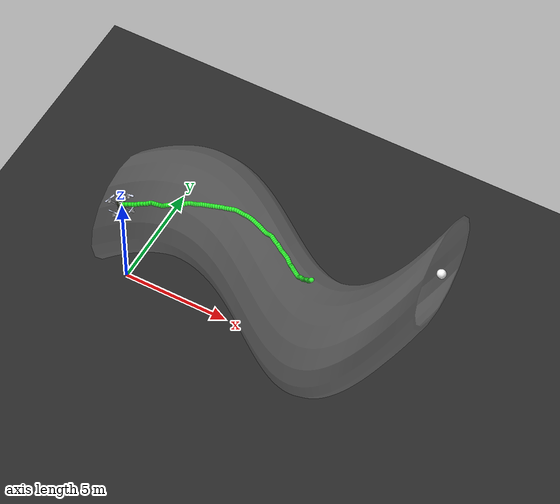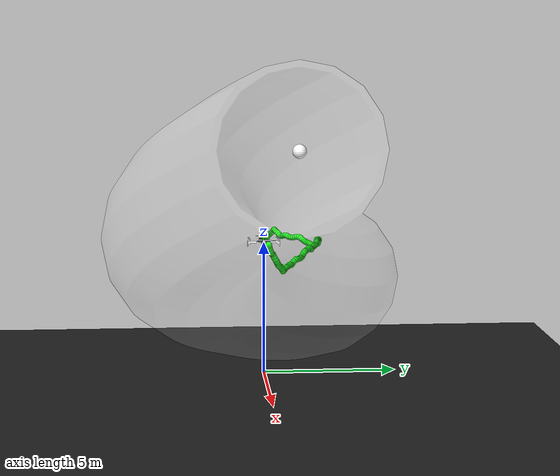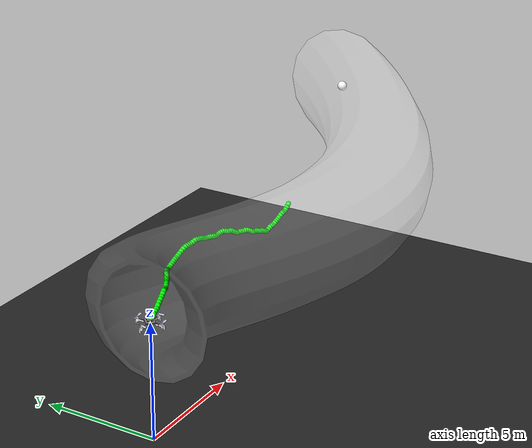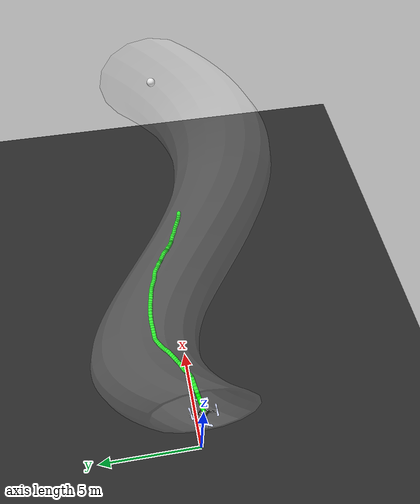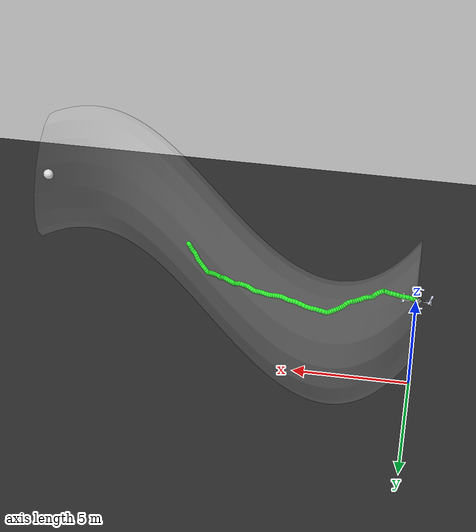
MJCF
<mujoco model="CF2 scene">
  <include file="cf2.xml" />

  <statistic center="0 0 0.1" extent="0.2" meansize=".05" />

  <visual>

    <rgba haze="0.15 0.25 0.35 0" />
    <global azimuth="-20" elevation="-20" ellipsoidinertia="true" />
    <map zfar="1000" />
  </visual>

  <asset>
    <mesh name="tunnel" file="tube_thick.obj" scale="1.0 1.0 1.0" />
    <texture type="skybox" builtin="gradient" rgb1="0.3 0.5 0.7" rgb2="0 0 0" width="512" height="3072" />

    <texture type="2d" name="groundplane" builtin="checker" mark="edge" rgb1="0.1 0.1 0.1" rgb2="0.2 0.2 0.2" markrgb="0.8 0.8 0.8" width="300" height="300" />

    <material name="groundplane" texture="groundplane" texuniform="true" texrepeat="5 5" reflectance="0.0" />
  </asset>

  <worldbody>
    <light diffuse="1 1 1" ambient="1 1 1" pos="0 0 100" dir="0 0 -1" directional="false" castshadow="false" />

    <geom name="floor" size="0 0 0.05" type="plane" material="groundplane" />
    <site name="x_axis" size="0.005" type="cylinder" fromto="0 0 0 1 0 0" rgba="1 0 0 1" />
    <site name="y_axis" size="0.005" type="cylinder" fromto="0 0 0 0 1 0" rgba="0 1 0 1" />
    <site name="z_axis" size="0.005" type="cylinder" fromto="0 0 0 0 0 1" rgba="0 0 1 1" />

    <site name="target" size="0.2" type="sphere" pos="15 0 10" rgba="1 1 1 1" />

    <camera name="cam_aux" pos="-3.429 -18.876 13.649" xyaxes="0.874 -0.486 -0.000 0.179 0.321 0.930" />
    <camera name="cam_traj_1" pos="-7.863 -0.826 23.122" xyaxes="0.020 -1.000 0.000 0.737 0.014 0.676" />
    <camera name="cam_traj_2" pos="7.041 -14.560 20.718" xyaxes="1.000 -0.031 -0.000 0.021 0.691 0.722" />
    <camera name="cam_traj_3" pos="-11.538 -0.602 8.690" xyaxes="0.046 -0.999 -0.000 0.161 0.007 0.987" />

    <body name="tunnel" pos="0.0 0.0 0.0" quat="1 0 0 0">
         <geom name="tunnel" type="mesh" mesh="tunnel" pos="-0.0 0.0 0.029" quat="1 0 0 0" rgba="1 1 1 0.05" />
    </body>

  <body name="trajectory_0" pos="0 0 0"><geom type="capsule" fromto="0.0016242307066964491 0.00035727284126292657 5.025240836531203 0.016792177813116975 0.0035838782917272127 5.068077347418681" size="0.1" rgba="0 1 0.0 1" /><geom type="capsule" fromto="0.016792177813116975 0.0035838782917272127 5.068077347418681 0.06507794690503341 0.011791616971504782 5.102545168872628" size="0.1" rgba="0 1 0.0 1" /><geom type="capsule" fromto="0.06507794690503341 0.011791616971504782 5.102545168872628 0.17600153098318522 0.03164271755064546 5.16753624537369" size="0.1" rgba="0 1 0.0 1" /><geom type="capsule" fromto="0.17600153098318522 0.03164271755064546 5.16753624537369 0.32722478067976635 0.06061030097704882 5.24559968063181" size="0.1" rgba="0 1 0.0 1" /><geom type="capsule" fromto="0.32722478067976635 0.06061030097704882 5.24559968063181 0.4681508263271362 0.08900980247075686 5.282821376171256" size="0.1" rgba="0 1 0.0 1" /><geom type="capsule" fromto="0.4681508263271362 0.08900980247075686 5.282821376171256 0.6018157600888904 0.11767093485095181 5.327084009479256" size="0.1" rgba="0 1 0.0 1" /><geom type="capsule" fromto="0.6018157600888904 0.11767093485095181 5.327084009479256 0.7402822786519755 0.15044524774542536 5.41260967560658" size="0.1" rgba="0 1 0.0 1" /><geom type="capsule" fromto="0.7402822786519755 0.15044524774542536 5.41260967560658 0.8656667919114448 0.1827594041475904 5.466191825755004" size="0.1" rgba="0 1 0.0 1" /><geom type="capsule" fromto="0.8656667919114448 0.1827594041475904 5.466191825755004 1.0000742271575636 0.21320986772431977 5.529156459676245" size="0.1" rgba="0 1 0.0 1" /><geom type="capsule" fromto="1.0000742271575636 0.21320986772431977 5.529156459676245 1.1309166958522894 0.24163478632838348 5.58000816374289" size="0.1" rgba="0 1 0.0 1" /><geom type="capsule" fromto="1.1309166958522894 0.24163478632838348 5.58000816374289 1.2488103382406166 0.2694466236793322 5.662883042841976" size="0.1" rgba="0 1 0.0 1" /><geom type="capsule" fromto="1.2488103382406166 0.2694466236793322 5.662883042841976 1.342564037281537 0.29607451788016925 5.709321277438194" size="0.1" rgba="0 1 0.0 1" /><geom type="capsule" fromto="1.342564037281537 0.29607451788016925 5.709321277438194 1.418511499548895 0.32198483103521863 5.679278104889069" size="0.1" rgba="0 1 0.0 1" /><geom type="capsule" fromto="1.418511499548895 0.32198483103521863 5.679278104889069 1.5008463677522434 0.35533789570155455 5.6520462384423" size="0.1" rgba="0 1 0.0 1" /><geom type="capsule" fromto="1.5008463677522434 0.35533789570155455 5.6520462384423 1.5878056039032877 0.39757571087802734 5.623655684157181" size="0.1" rgba="0 1 0.0 1" /><geom type="capsule" fromto="1.5878056039032877 0.39757571087802734 5.623655684157181 1.666302889656289 0.4438420000958776 5.57870450509224" size="0.1" rgba="0 1 0.0 1" /><geom type="capsule" fromto="1.666302889656289 0.4438420000958776 5.57870450509224 1.7330056734746202 0.49118244411282663 5.53204344336847" size="0.1" rgba="0 1 0.0 1" /><geom type="capsule" fromto="1.7330056734746202 0.49118244411282663 5.53204344336847 1.7956577550508948 0.535576608465578 5.523877414556881" size="0.1" rgba="0 1 0.0 1" /><geom type="capsule" fromto="1.7956577550508948 0.535576608465578 5.523877414556881 1.8679827067285817 0.5762815142047812 5.54714198520346" size="0.1" rgba="0 1 0.0 1" /><geom type="capsule" fromto="1.8679827067285817 0.5762815142047812 5.54714198520346 1.9517918913069394 0.6167259430169639 5.575853768205154" size="0.1" rgba="0 1 0.0 1" /><geom type="capsule" fromto="1.9517918913069394 0.6167259430169639 5.575853768205154 2.038902157467931 0.6608764973850116 5.593298757132049" size="0.1" rgba="0 1 0.0 1" /><geom type="capsule" fromto="2.038902157467931 0.6608764973850116 5.593298757132049 2.1284173640098354 0.709831470780614 5.587448438459598" size="0.1" rgba="0 1 0.0 1" /><geom type="capsule" fromto="2.1284173640098354 0.709831470780614 5.587448438459598 2.2169501855641016 0.7605677327903723 5.559242145740712" size="0.1" rgba="0 1 0.0 1" /><geom type="capsule" fromto="2.2169501855641016 0.7605677327903723 5.559242145740712 2.3112102748219234 0.8169199101810714 5.5614641626859065" size="0.1" rgba="0 1 0.0 1" /><geom type="capsule" fromto="2.3112102748219234 0.8169199101810714 5.5614641626859065 2.40127291748281 0.8754002663322565 5.569014345120183" size="0.1" rgba="0 1 0.0 1" /><geom type="capsule" fromto="2.40127291748281 0.8754002663322565 5.569014345120183 2.4875064212119073 0.9364565188115707 5.584957554248743" size="0.1" rgba="0 1 0.0 1" /><geom type="capsule" fromto="2.4875064212119073 0.9364565188115707 5.584957554248743 2.5747721851727676 1.001745473799322 5.621791601263369" size="0.1" rgba="0 1 0.0 1" /><geom type="capsule" fromto="2.5747721851727676 1.001745473799322 5.621791601263369 2.65861637798802 1.0642421756426634 5.631029485779322" size="0.1" rgba="0 1 0.0 1" /><geom type="capsule" fromto="2.65861637798802 1.0642421756426634 5.631029485779322 2.7411138218613287 1.1245784246029351 5.622998117316388" size="0.1" rgba="0 1 0.0 1" /><geom type="capsule" fromto="2.7411138218613287 1.1245784246029351 5.622998117316388 2.8136458446482657 1.1800812371873701 5.579181506806972" size="0.1" rgba="0 1 0.0 1" /><geom type="capsule" fromto="2.8136458446482657 1.1800812371873701 5.579181506806972 2.8808387233562134 1.2272831784517444 5.540600999252269" size="0.1" rgba="0 1 0.0 1" /><geom type="capsule" fromto="2.8808387233562134 1.2272831784517444 5.540600999252269 2.9460517205397223 1.2682071365661216 5.522883477218278" size="0.1" rgba="0 1 0.0 1" /><geom type="capsule" fromto="2.9460517205397223 1.2682071365661216 5.522883477218278 3.0099617979020588 1.31073154631683 5.494507364225115" size="0.1" rgba="0 1 0.0 1" /><geom type="capsule" fromto="3.0099617979020588 1.31073154631683 5.494507364225115 3.0815509552020006 1.3589520281451197 5.484540081544132" size="0.1" rgba="0 1 0.0 1" /><geom type="capsule" fromto="3.0815509552020006 1.3589520281451197 5.484540081544132 3.1617993903104114 1.406021451782459 5.4822482853178265" size="0.1" rgba="0 1 0.0 1" /><geom type="capsule" fromto="3.1617993903104114 1.406021451782459 5.4822482853178265 3.244704450776487 1.448343516317241 5.461847636371677" size="0.1" rgba="0 1 0.0 1" /><geom type="capsule" fromto="3.244704450776487 1.448343516317241 5.461847636371677 3.3276558356664885 1.489820941288449 5.443806455548776" size="0.1" rgba="0 1 0.0 1" /><geom type="capsule" fromto="3.3276558356664885 1.489820941288449 5.443806455548776 3.4073448099199375 1.5295863373490803 5.426697739153552" size="0.1" rgba="0 1 0.0 1" /><geom type="capsule" fromto="3.4073448099199375 1.5295863373490803 5.426697739153552 3.4935380315692743 1.5597853122671557 5.419922366060234" size="0.1" rgba="0 1 0.0 1" /><geom type="capsule" fromto="3.4935380315692743 1.5597853122671557 5.419922366060234 3.60463244564459 1.5749952801672735 5.453905540618287" size="0.1" rgba="0 1 0.0 1" /><geom type="capsule" fromto="3.60463244564459 1.5749952801672735 5.453905540618287 3.7325640119812458 1.5816359115523224 5.504700672452823" size="0.1" rgba="0 1 0.0 1" /><geom type="capsule" fromto="3.7325640119812458 1.5816359115523224 5.504700672452823 3.850083433560304 1.588427130504364 5.533291559684574" size="0.1" rgba="0 1 0.0 1" /><geom type="capsule" fromto="3.850083433560304 1.588427130504364 5.533291559684574 3.9625700580019876 1.599174928223456 5.5783735645183" size="0.1" rgba="0 1 0.0 1" /><geom type="capsule" fromto="3.9625700580019876 1.599174928223456 5.5783735645183 4.067230835111724 1.6095394765053506 5.609014302170815" size="0.1" rgba="0 1 0.0 1" /><geom type="capsule" fromto="4.067230835111724 1.6095394765053506 5.609014302170815 4.171890940346022 1.6155674688338924 5.623693563580451" size="0.1" rgba="0 1 0.0 1" /><geom type="capsule" fromto="4.171890940346022 1.6155674688338924 5.623693563580451 4.2934765243901 1.6176929795776511 5.668305854217339" size="0.1" rgba="0 1 0.0 1" /><geom type="capsule" fromto="4.2934765243901 1.6176929795776511 5.668305854217339 4.419902530393039 1.6167829223956516 5.7176279335245095" size="0.1" rgba="0 1 0.0 1" /><geom type="capsule" fromto="4.419902530393039 1.6167829223956516 5.7176279335245095 4.55404674898675 1.6100784589623782 5.781771847339537" size="0.1" rgba="0 1 0.0 1" /><geom type="capsule" fromto="4.55404674898675 1.6100784589623782 5.781771847339537 4.68240202902296 1.5986458450993475 5.837876008735576" size="0.1" rgba="0 1 0.0 1" /><geom type="capsule" fromto="4.68240202902296 1.5986458450993475 5.837876008735576 4.7976702611906425 1.584358974221217 5.869985262824092" size="0.1" rgba="0 1 0.0 1" /><geom type="capsule" fromto="4.7976702611906425 1.584358974221217 5.869985262824092 4.903078518351056 1.5692603074590965 5.875188975130719" size="0.1" rgba="0 1 0.0 1" /><geom type="capsule" fromto="4.903078518351056 1.5692603074590965 5.875188975130719 5.007457546887881 1.5518438466244664 5.877084085718385" size="0.1" rgba="0 1 0.0 1" /><geom type="capsule" fromto="5.007457546887881 1.5518438466244664 5.877084085718385 5.115559516999508 1.528886041532279 5.8907459765075" size="0.1" rgba="0 1 0.0 1" /><geom type="capsule" fromto="5.115559516999508 1.528886041532279 5.8907459765075 5.23252134127328 1.5019843509274633 5.9278310665144085" size="0.1" rgba="0 1 0.0 1" /><geom type="capsule" fromto="5.23252134127328 1.5019843509274633 5.9278310665144085 5.345171982166391 1.4785058433263893 5.960061648124492" size="0.1" rgba="0 1 0.0 1" /><geom type="capsule" fromto="5.345171982166391 1.4785058433263893 5.960061648124492 5.442390969864802 1.4603501807592605 5.9590552389691265" size="0.1" rgba="0 1 0.0 1" /><geom type="capsule" fromto="5.442390969864802 1.4603501807592605 5.9590552389691265 5.5346885068898874 1.443008370937544 5.949667980546088" size="0.1" rgba="0 1 0.0 1" /><geom type="capsule" fromto="5.5346885068898874 1.443008370937544 5.949667980546088 5.626135603291774 1.4246341984446305 5.9400957532096985" size="0.1" rgba="0 1 0.0 1" /><geom type="capsule" fromto="5.626135603291774 1.4246341984446305 5.9400957532096985 5.7151233602751965 1.4061955293742519 5.921407425031522" size="0.1" rgba="0 1 0.0 1" /><geom type="capsule" fromto="5.7151233602751965 1.4061955293742519 5.921407425031522 5.801174329835579 1.386815406849964 5.89293278287863" size="0.1" rgba="0 1 0.0 1" /><geom type="capsule" fromto="5.801174329835579 1.386815406849964 5.89293278287863 5.887958106777882 1.3637752860997612 5.873238068884671" size="0.1" rgba="0 1 0.0 1" /><geom type="capsule" fromto="5.887958106777882 1.3637752860997612 5.873238068884671 5.976359447849797 1.3345377129209899 5.866356856855762" size="0.1" rgba="0 1 0.0 1" /><geom type="capsule" fromto="5.976359447849797 1.3345377129209899 5.866356856855762 6.06410174842795 1.2995365846694318 5.861068800998261" size="0.1" rgba="0 1 0.0 1" /><geom type="capsule" fromto="6.06410174842795 1.2995365846694318 5.861068800998261 6.151435540912381 1.2615977103667306 5.854859526399462" size="0.1" rgba="0 1 0.0 1" /><geom type="capsule" fromto="6.151435540912381 1.2615977103667306 5.854859526399462 6.238310309042901 1.2262095482924693 5.84171078609308" size="0.1" rgba="0 1 0.0 1" /><geom type="capsule" fromto="6.238310309042901 1.2262095482924693 5.84171078609308 6.324083865501767 1.1982528191537227 5.821479897412174" size="0.1" rgba="0 1 0.0 1" /><geom type="capsule" fromto="6.324083865501767 1.1982528191537227 5.821479897412174 6.40930906146631 1.178572728631368 5.809296512767536" size="0.1" rgba="0 1 0.0 1" /><geom type="capsule" fromto="6.40930906146631 1.178572728631368 5.809296512767536 6.4918991405930955 1.1641935195629112 5.816236199469627" size="0.1" rgba="0 1 0.0 1" /><geom type="capsule" fromto="6.4918991405930955 1.1641935195629112 5.816236199469627 6.573919849766287 1.1466830604806073 5.845241351726314" size="0.1" rgba="0 1 0.0 1" /><geom type="capsule" fromto="6.573919849766287 1.1466830604806073 5.845241351726314 6.656795009206265 1.119929902947843 5.873926759811006" size="0.1" rgba="0 1 0.0 1" /><geom type="capsule" fromto="6.656795009206265 1.119929902947843 5.873926759811006 6.734125020997047 1.0820376168675396 5.904031865970198" size="0.1" rgba="0 1 0.0 1" /><geom type="capsule" fromto="6.734125020997047 1.0820376168675396 5.904031865970198 6.800256044432322 1.0402150489585322 5.905858343408738" size="0.1" rgba="0 1 0.0 1" /><geom type="capsule" fromto="6.800256044432322 1.0402150489585322 5.905858343408738 6.865610409185712 1.000342457008332 5.883025008993923" size="0.1" rgba="0 1 0.0 1" /><geom type="capsule" fromto="6.865610409185712 1.000342457008332 5.883025008993923 6.9388240475831795 0.9615884743030279 5.8632844425371395" size="0.1" rgba="0 1 0.0 1" /><geom type="capsule" fromto="6.9388240475831795 0.9615884743030279 5.8632844425371395 7.01887802822784 0.923044299796602 5.8515727229766625" size="0.1" rgba="0 1 0.0 1" /><geom type="capsule" fromto="7.01887802822784 0.923044299796602 5.8515727229766625 7.103482197998484 0.8861573893896347 5.851278807668758" size="0.1" rgba="0 1 0.0 1" /><geom type="capsule" fromto="7.103482197998484 0.8861573893896347 5.851278807668758 7.179551616046154 0.8524786159385916 5.815367740774389" size="0.1" rgba="0 1 0.0 1" /><geom type="capsule" fromto="7.179551616046154 0.8524786159385916 5.815367740774389 7.245376618125558 0.8202457098674308 5.767782657273866" size="0.1" rgba="0 1 0.0 1" /><geom type="capsule" fromto="7.245376618125558 0.8202457098674308 5.767782657273866 7.304454829949599 0.7905750332880024 5.737136215683552" size="0.1" rgba="0 1 0.0 1" /><geom type="capsule" fromto="7.304454829949599 0.7905750332880024 5.737136215683552 7.361037657022653 0.7623368903480221 5.7006352968648875" size="0.1" rgba="0 1 0.0 1" /><geom type="capsule" fromto="7.361037657022653 0.7623368903480221 5.7006352968648875 7.427715037334346 0.7312914393924569 5.691406786780552" size="0.1" rgba="0 1 0.0 1" /><geom type="capsule" fromto="7.427715037334346 0.7312914393924569 5.691406786780552 7.502151015385965 0.6945636075611535 5.702757537265521" size="0.1" rgba="0 1 0.0 1" /><geom type="capsule" fromto="7.502151015385965 0.6945636075611535 5.702757537265521 7.574577271036616 0.6533389027876062 5.696820153435637" size="0.1" rgba="0 1 0.0 1" /><geom type="capsule" fromto="7.574577271036616 0.6533389027876062 5.696820153435637 7.651062757357083 0.6093339912183711 5.694370599264193" size="0.1" rgba="0 1 0.0 1" /><geom type="capsule" fromto="7.651062757357083 0.6093339912183711 5.694370599264193 7.7317128640896415 0.5618720638462409 5.708560232360654" size="0.1" rgba="0 1 0.0 1" /><geom type="capsule" fromto="7.7317128640896415 0.5618720638462409 5.708560232360654 7.8034570072227645 0.5135937798306125 5.697506284180835" size="0.1" rgba="0 1 0.0 1" /><geom type="capsule" fromto="7.8034570072227645 0.5135937798306125 5.697506284180835 7.86414712073867 0.4675170546952716 5.667538368240765" size="0.1" rgba="0 1 0.0 1" /><geom type="capsule" fromto="7.86414712073867 0.4675170546952716 5.667538368240765 7.9206408028433755 0.42614854832843274 5.635069070266618" size="0.1" rgba="0 1 0.0 1" /><geom type="capsule" fromto="7.9206408028433755 0.42614854832843274 5.635069070266618 7.974703530905389 0.3914754733742265 5.590272342352884" size="0.1" rgba="0 1 0.0 1" /><geom type="capsule" fromto="7.974703530905389 0.3914754733742265 5.590272342352884 8.025289788129495 0.361817691193683 5.569556616216855" size="0.1" rgba="0 1 0.0 1" /><geom type="capsule" fromto="8.025289788129495 0.361817691193683 5.569556616216855 8.076274138818068 0.3328183963649934 5.583359268296424" size="0.1" rgba="0 1 0.0 1" /><geom type="capsule" fromto="8.076274138818068 0.3328183963649934 5.583359268296424 8.126599521996907 0.3016610419208043 5.591010703600376" size="0.1" rgba="0 1 0.0 1" /><geom type="capsule" fromto="8.126599521996907 0.3016610419208043 5.591010703600376 8.173148734932758 0.268333030497553 5.577449709464876" size="0.1" rgba="0 1 0.0 1" /><geom type="capsule" fromto="8.173148734932758 0.268333030497553 5.577449709464876 8.221013027450914 0.23540966486938594 5.562498325287376" size="0.1" rgba="0 1 0.0 1" /><geom type="capsule" fromto="8.221013027450914 0.23540966486938594 5.562498325287376 8.274981507867205 0.20402781960002447 5.551002733867967" size="0.1" rgba="0 1 0.0 1" /><geom type="capsule" fromto="8.274981507867205 0.20402781960002447 5.551002733867967 8.333695703859483 0.17152036962250017 5.5421904230851045" size="0.1" rgba="0 1 0.0 1" /><geom type="capsule" fromto="8.333695703859483 0.17152036962250017 5.5421904230851045 8.393246725246613 0.1393878894117273 5.529218439965589" size="0.1" rgba="0 1 0.0 1" /><geom type="capsule" fromto="8.393246725246613 0.1393878894117273 5.529218439965589 8.453003660063855 0.11040218221378234 5.5048909318613175" size="0.1" rgba="0 1 0.0 1" /><geom type="capsule" fromto="8.453003660063855 0.11040218221378234 5.5048909318613175 8.512406038404974 0.08449284187156411 5.478617547149719" size="0.1" rgba="0 1 0.0 1" /><geom type="capsule" fromto="8.512406038404974 0.08449284187156411 5.478617547149719 8.57247289184411 0.062046058087883244 5.465179292225573" size="0.1" rgba="0 1 0.0 1" /><geom type="capsule" fromto="8.57247289184411 0.062046058087883244 5.465179292225573 8.637262644456335 0.03669449268802879 5.4991291892856715" size="0.1" rgba="0 1 0.0 1" /><geom type="capsule" fromto="8.637262644456335 0.03669449268802879 5.4991291892856715 8.70424337245949 0.00199566547271713 5.568226347360947" size="0.1" rgba="0 1 0.0 1" /><geom type="capsule" fromto="8.70424337245949 0.00199566547271713 5.568226347360947 8.769879496792328 -0.03979927582322768 5.642242548467266" size="0.1" rgba="0 1 0.0 1" /><geom type="capsule" fromto="8.769879496792328 -0.03979927582322768 5.642242548467266 8.828222380116042 -0.08144571345189003 5.6720718549371245" size="0.1" rgba="0 1 0.0 1" /><geom type="capsule" fromto="8.828222380116042 -0.08144571345189003 5.6720718549371245 8.884416165731597 -0.12010256467969463 5.713964177138538" size="0.1" rgba="0 1 0.0 1" /><geom type="capsule" fromto="8.884416165731597 -0.12010256467969463 5.713964177138538 8.947166906712814 -0.1531208600427742 5.795049651379743" size="0.1" rgba="0 1 0.0 1" /><geom type="capsule" fromto="8.947166906712814 -0.1531208600427742 5.795049651379743 9.010873239442583 -0.18376968193338478 5.850810165953785" size="0.1" rgba="0 1 0.0 1" /><geom type="capsule" fromto="9.010873239442583 -0.18376968193338478 5.850810165953785 9.068490707877125 -0.22407121160075555 5.928645785307671" size="0.1" rgba="0 1 0.0 1" /><geom type="capsule" fromto="9.068490707877125 -0.22407121160075555 5.928645785307671 9.11676383934948 -0.2706361281922799 6.017876606654177" size="0.1" rgba="0 1 0.0 1" /><geom type="capsule" fromto="9.11676383934948 -0.2706361281922799 6.017876606654177 9.16745300774453 -0.31351791086236647 6.104811319477405" size="0.1" rgba="0 1 0.0 1" /><geom type="capsule" fromto="9.16745300774453 -0.31351791086236647 6.104811319477405 9.220365929492951 -0.34937368177950073 6.1599343724238755" size="0.1" rgba="0 1 0.0 1" /><geom type="capsule" fromto="9.220365929492951 -0.34937368177950073 6.1599343724238755 9.270121584137605 -0.37709575988653676 6.17866178149529" size="0.1" rgba="0 1 0.0 1" /><geom type="capsule" fromto="9.270121584137605 -0.37709575988653676 6.17866178149529 9.319912562516278 -0.4030155713088363 6.2389902982175585" size="0.1" rgba="0 1 0.0 1" /><geom type="capsule" fromto="9.319912562516278 -0.4030155713088363 6.2389902982175585 9.372464919452616 -0.43161688310997615 6.327600323677753" size="0.1" rgba="0 1 0.0 1" /><geom type="capsule" fromto="9.372464919452616 -0.43161688310997615 6.327600323677753 9.424948808703903 -0.45487448570197403 6.417660803286492" size="0.1" rgba="0 1 0.0 1" /><geom type="capsule" fromto="9.424948808703903 -0.45487448570197403 6.417660803286492 9.471810715829012 -0.4710506803187078 6.484917668395276" size="0.1" rgba="0 1 0.0 1" /></body></worldbody>

  <contact>
    <exclude name="cf2_tunnel" body1="cf2" body2="tunnel" />
  </contact>

</mujoco>

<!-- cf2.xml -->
<mujoco model="cf2">
  <option integrator="RK4" density="1.225" viscosity="1.8e-5" timestep="0.1"/>

  <compiler inertiafromgeom="false" meshdir="assets" autolimits="true"/>

  <default>
    <default class="cf2">
      <default class="visual">
        <geom group="2" type="mesh" contype="0" conaffinity="0"/>
      </default>
      <default class="collision">
        <geom group="3" type="mesh"/>
      </default>
      <site group="5"/>
    </default>
  </default>

  <asset>
    <material name="polished_plastic" rgba="0.631 0.659 0.678 1"/>
    <material name="polished_gold" rgba="0.969 0.878 0.6 1"/>
    <material name="medium_gloss_plastic" rgba="0.109 0.184 0.0 1"/>
    <material name="propeller_plastic" rgba="0.792 0.820 0.933 1"/>
    <material name="white" rgba="1 1 1 1"/>
    <material name="body_frame_plastic" rgba="0.102 0.102 0.102 1"/>
    <material name="burnished_chrome" rgba="0.898 0.898 0.898 1"/>

    <mesh file="cf2_0.obj"/>
    <mesh file="cf2_1.obj"/>
    <mesh file="cf2_2.obj"/>
    <mesh file="cf2_3.obj"/>
    <mesh file="cf2_4.obj"/>
    <mesh file="cf2_5.obj"/>
    <mesh file="cf2_6.obj"/>
    <mesh file="cf2_collision_0.obj"/>
    <mesh file="cf2_collision_1.obj"/>
    <mesh file="cf2_collision_2.obj"/>
    <mesh file="cf2_collision_3.obj"/>
    <mesh file="cf2_collision_4.obj"/>
    <mesh file="cf2_collision_5.obj"/>
    <mesh file="cf2_collision_6.obj"/>
    <mesh file="cf2_collision_7.obj"/>
    <mesh file="cf2_collision_8.obj"/>
    <mesh file="cf2_collision_9.obj"/>
    <mesh file="cf2_collision_10.obj"/>
    <mesh file="cf2_collision_11.obj"/>
    <mesh file="cf2_collision_12.obj"/>
    <mesh file="cf2_collision_13.obj"/>
    <mesh file="cf2_collision_14.obj"/>
    <mesh file="cf2_collision_15.obj"/>
    <mesh file="cf2_collision_16.obj"/>
    <mesh file="cf2_collision_17.obj"/>
    <mesh file="cf2_collision_18.obj"/>
    <mesh file="cf2_collision_19.obj"/>
    <mesh file="cf2_collision_20.obj"/>
    <mesh file="cf2_collision_21.obj"/>
    <mesh file="cf2_collision_22.obj"/>
    <mesh file="cf2_collision_23.obj"/>
    <mesh file="cf2_collision_24.obj"/>
    <mesh file="cf2_collision_25.obj"/>
    <mesh file="cf2_collision_26.obj"/>
    <mesh file="cf2_collision_27.obj"/>
    <mesh file="cf2_collision_28.obj"/>
    <mesh file="cf2_collision_29.obj"/>
    <mesh file="cf2_collision_30.obj"/>
    <mesh file="cf2_collision_31.obj"/>
  </asset>

  <worldbody>
    <body name="cf2" pos="0 0.0 5.0" childclass="cf2">
      <freejoint/>
      <inertial pos="0 0 0" mass="0.1" diaginertia="1e-2 1e-2 1e-2"/>
      <camera name="track_cf2" pos="-10  0 1" fovy="60" xyaxes="0 -1 0 0 0 1" mode="trackcom"/>
      <geom mesh="cf2_0" material="propeller_plastic" class="visual"/>
      <geom mesh="cf2_1" material="medium_gloss_plastic" class="visual"/>
      <geom mesh="cf2_2" material="polished_gold" class="visual"/>
      <geom mesh="cf2_3" material="polished_plastic" class="visual"/>
      <geom mesh="cf2_4" material="burnished_chrome" class="visual"/>
      <geom mesh="cf2_5" material="body_frame_plastic" class="visual"/>
      <geom mesh="cf2_6" material="white" class="visual"/>
      <geom mesh="cf2_collision_0" class="collision"/>
      <geom mesh="cf2_collision_1" class="collision"/>
      <geom mesh="cf2_collision_2" class="collision"/>
      <geom mesh="cf2_collision_3" class="collision"/>
      <geom mesh="cf2_collision_4" class="collision"/>
      <geom mesh="cf2_collision_5" class="collision"/>
      <geom mesh="cf2_collision_6" class="collision"/>
      <geom mesh="cf2_collision_7" class="collision"/>
      <geom mesh="cf2_collision_8" class="collision"/>
      <geom mesh="cf2_collision_9" class="collision"/>
      <geom mesh="cf2_collision_10" class="collision"/>
      <geom mesh="cf2_collision_11" class="collision"/>
      <geom mesh="cf2_collision_12" class="collision"/>
      <geom mesh="cf2_collision_13" class="collision"/>
      <geom mesh="cf2_collision_14" class="collision"/>
      <geom mesh="cf2_collision_15" class="collision"/>
      <geom mesh="cf2_collision_16" class="collision"/>
      <geom mesh="cf2_collision_17" class="collision"/>
      <geom mesh="cf2_collision_18" class="collision"/>
      <geom mesh="cf2_collision_19" class="collision"/>
      <geom mesh="cf2_collision_20" class="collision"/>
      <geom mesh="cf2_collision_21" class="collision"/>
      <geom mesh="cf2_collision_22" class="collision"/>
      <geom mesh="cf2_collision_23" class="collision"/>
      <geom mesh="cf2_collision_24" class="collision"/>
      <geom mesh="cf2_collision_25" class="collision"/>
      <geom mesh="cf2_collision_26" class="collision"/>
      <geom mesh="cf2_collision_27" class="collision"/>
      <geom mesh="cf2_collision_28" class="collision"/>
      <geom mesh="cf2_collision_29" class="collision"/>
      <geom mesh="cf2_collision_30" class="collision"/>
      <geom mesh="cf2_collision_31" class="collision"/>
      <site name="imu"/>
      <site name="actuation"/>
    </body>
  </worldbody>

  <actuator>
    <motor class="cf2" gear="0 0 1 0 0 0" site="actuation" name="body_thrust"/>
    <motor class="cf2" gear="0 0 0 1 0 0" site="actuation" name="x_moment"/>
    <motor class="cf2" gear="0 0 0 0 1 0" site="actuation" name="y_moment"/>
    <motor class="cf2" gear="0 0 0 0 0 1" site="actuation" name="z_moment"/>
  </actuator>

  <sensor>
    <gyro name="body_gyro" site="imu"/>
    <accelerometer name="body_linacc" site="imu"/>
    <framequat name="body_quat" objtype="site" objname="imu"/>
  </sensor>

  <keyframe>
    <key name="hover" qpos="0 0 0.1 1 0 0 0" ctrl="0.26487 0 0 0"/>
  </keyframe>
</mujoco>
